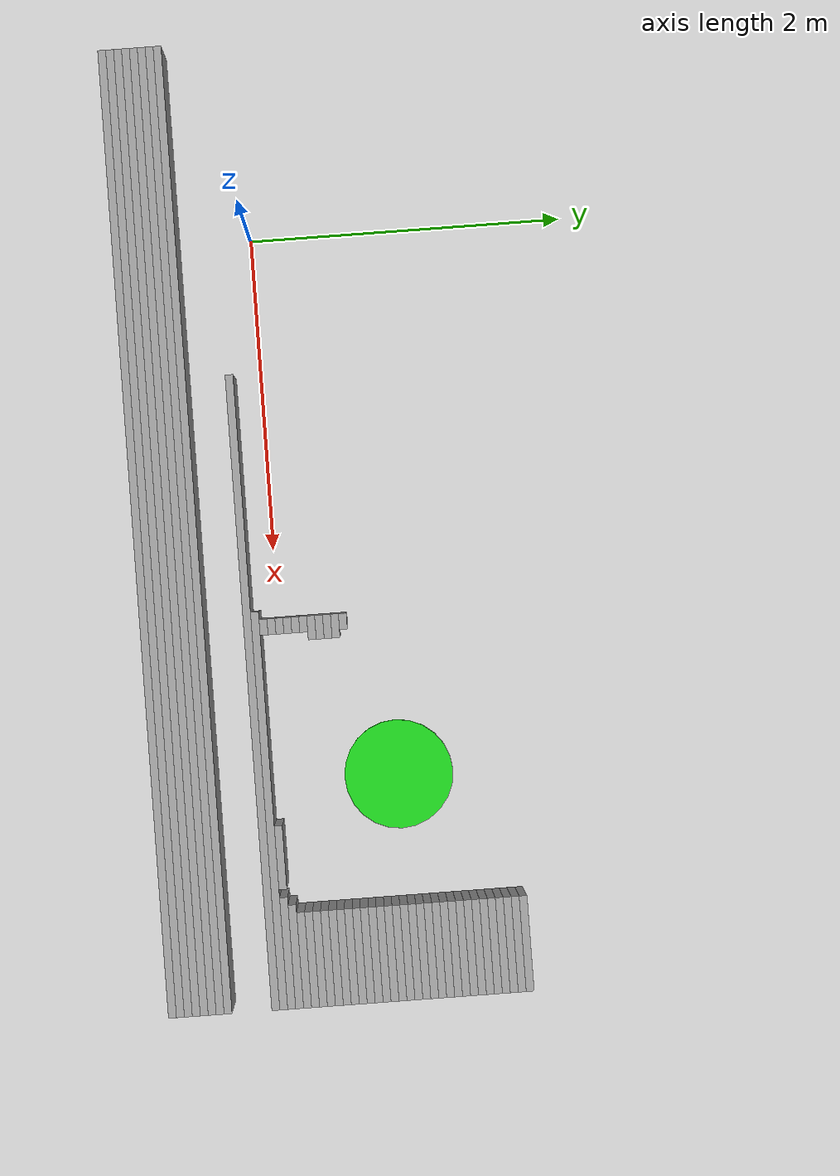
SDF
<sdf version="1.6">
 <world name="lab_world">
  <model name="ground_plane">
   <static>true</static>
   <link name="link">
    <collision name="collision">
     <geometry><plane><normal>0 0 1</normal><size>100 100</size></plane></geometry>
    </collision>
    <visual name="visual">
     <geometry><plane><normal>0 0 1</normal><size>100 100</size></plane></geometry>
     <material><ambient>0.8 0.8 0.8 1</ambient><diffuse>0.8 0.8 0.8 1</diffuse></material>
    </visual>
   </link>
  </model>
  <model name="wall_123">
   <static>true</static>
   <pose>4.5840 1.4160 0.2500 0 0 0</pose>
   <link name="link">
    <collision name="col"><geometry><box><size>0.6000 0.0500 0.5000</size></box></geometry></collision>
    <visual name="vis">
     <geometry><box><size>0.6000 0.0500 0.5000</size></box></geometry>
     <material><ambient>0.4 0.4 0.4 1</ambient><diffuse>0.6 0.6 0.6 1</diffuse></material>
    </visual>
   </link>
  </model>
  <model name="wall_125">
   <static>true</static>
   <pose>4.5840 1.3660 0.2500 0 0 0</pose>
   <link name="link">
    <collision name="col"><geometry><box><size>0.6000 0.0500 0.5000</size></box></geometry></collision>
    <visual name="vis">
     <geometry><box><size>0.6000 0.0500 0.5000</size></box></geometry>
     <material><ambient>0.4 0.4 0.4 1</ambient><diffuse>0.6 0.6 0.6 1</diffuse></material>
    </visual>
   </link>
  </model>
  <model name="wall_127">
   <static>true</static>
   <pose>4.5840 1.3160 0.2500 0 0 0</pose>
   <link name="link">
    <collision name="col"><geometry><box><size>0.6000 0.0500 0.5000</size></box></geometry></collision>
    <visual name="vis">
     <geometry><box><size>0.6000 0.0500 0.5000</size></box></geometry>
     <material><ambient>0.4 0.4 0.4 1</ambient><diffuse>0.6 0.6 0.6 1</diffuse></material>
    </visual>
   </link>
  </model>
  <model name="wall_129">
   <static>true</static>
   <pose>4.5840 1.2660 0.2500 0 0 0</pose>
   <link name="link">
    <collision name="col"><geometry><box><size>0.6000 0.0500 0.5000</size></box></geometry></collision>
    <visual name="vis">
     <geometry><box><size>0.6000 0.0500 0.5000</size></box></geometry>
     <material><ambient>0.4 0.4 0.4 1</ambient><diffuse>0.6 0.6 0.6 1</diffuse></material>
    </visual>
   </link>
  </model>
  <model name="wall_131">
   <static>true</static>
   <pose>4.5840 1.2160 0.2500 0 0 0</pose>
   <link name="link">
    <collision name="col"><geometry><box><size>0.6000 0.0500 0.5000</size></box></geometry></collision>
    <visual name="vis">
     <geometry><box><size>0.6000 0.0500 0.5000</size></box></geometry>
     <material><ambient>0.4 0.4 0.4 1</ambient><diffuse>0.6 0.6 0.6 1</diffuse></material>
    </visual>
   </link>
  </model>
  <model name="wall_133">
   <static>true</static>
   <pose>4.5840 1.1660 0.2500 0 0 0</pose>
   <link name="link">
    <collision name="col"><geometry><box><size>0.6000 0.0500 0.5000</size></box></geometry></collision>
    <visual name="vis">
     <geometry><box><size>0.6000 0.0500 0.5000</size></box></geometry>
     <material><ambient>0.4 0.4 0.4 1</ambient><diffuse>0.6 0.6 0.6 1</diffuse></material>
    </visual>
   </link>
  </model>
  <model name="wall_135">
   <static>true</static>
   <pose>4.5840 1.1160 0.2500 0 0 0</pose>
   <link name="link">
    <collision name="col"><geometry><box><size>0.6000 0.0500 0.5000</size></box></geometry></collision>
    <visual name="vis">
     <geometry><box><size>0.6000 0.0500 0.5000</size></box></geometry>
     <material><ambient>0.4 0.4 0.4 1</ambient><diffuse>0.6 0.6 0.6 1</diffuse></material>
    </visual>
   </link>
  </model>
  <model name="wall_137">
   <static>true</static>
   <pose>4.5840 1.0660 0.2500 0 0 0</pose>
   <link name="link">
    <collision name="col"><geometry><box><size>0.6000 0.0500 0.5000</size></box></geometry></collision>
    <visual name="vis">
     <geometry><box><size>0.6000 0.0500 0.5000</size></box></geometry>
     <material><ambient>0.4 0.4 0.4 1</ambient><diffuse>0.6 0.6 0.6 1</diffuse></material>
    </visual>
   </link>
  </model>
  <model name="wall_139">
   <static>true</static>
   <pose>4.5840 1.0160 0.2500 0 0 0</pose>
   <link name="link">
    <collision name="col"><geometry><box><size>0.6000 0.0500 0.5000</size></box></geometry></collision>
    <visual name="vis">
     <geometry><box><size>0.6000 0.0500 0.5000</size></box></geometry>
     <material><ambient>0.4 0.4 0.4 1</ambient><diffuse>0.6 0.6 0.6 1</diffuse></material>
    </visual>
   </link>
  </model>
  <model name="wall_141">
   <static>true</static>
   <pose>4.5840 0.9660 0.2500 0 0 0</pose>
   <link name="link">
    <collision name="col"><geometry><box><size>0.6000 0.0500 0.5000</size></box></geometry></collision>
    <visual name="vis">
     <geometry><box><size>0.6000 0.0500 0.5000</size></box></geometry>
     <material><ambient>0.4 0.4 0.4 1</ambient><diffuse>0.6 0.6 0.6 1</diffuse></material>
    </visual>
   </link>
  </model>
  <model name="wall_143">
   <static>true</static>
   <pose>4.5840 0.9160 0.2500 0 0 0</pose>
   <link name="link">
    <collision name="col"><geometry><box><size>0.6000 0.0500 0.5000</size></box></geometry></collision>
    <visual name="vis">
     <geometry><box><size>0.6000 0.0500 0.5000</size></box></geometry>
     <material><ambient>0.4 0.4 0.4 1</ambient><diffuse>0.6 0.6 0.6 1</diffuse></material>
    </visual>
   </link>
  </model>
  <model name="wall_145">
   <static>true</static>
   <pose>4.5840 0.8660 0.2500 0 0 0</pose>
   <link name="link">
    <collision name="col"><geometry><box><size>0.6000 0.0500 0.5000</size></box></geometry></collision>
    <visual name="vis">
     <geometry><box><size>0.6000 0.0500 0.5000</size></box></geometry>
     <material><ambient>0.4 0.4 0.4 1</ambient><diffuse>0.6 0.6 0.6 1</diffuse></material>
    </visual>
   </link>
  </model>
  <model name="wall_147">
   <static>true</static>
   <pose>4.5840 0.8160 0.2500 0 0 0</pose>
   <link name="link">
    <collision name="col"><geometry><box><size>0.6000 0.0500 0.5000</size></box></geometry></collision>
    <visual name="vis">
     <geometry><box><size>0.6000 0.0500 0.5000</size></box></geometry>
     <material><ambient>0.4 0.4 0.4 1</ambient><diffuse>0.6 0.6 0.6 1</diffuse></material>
    </visual>
   </link>
  </model>
  <model name="wall_149">
   <static>true</static>
   <pose>4.5840 0.7660 0.2500 0 0 0</pose>
   <link name="link">
    <collision name="col"><geometry><box><size>0.6000 0.0500 0.5000</size></box></geometry></collision>
    <visual name="vis">
     <geometry><box><size>0.6000 0.0500 0.5000</size></box></geometry>
     <material><ambient>0.4 0.4 0.4 1</ambient><diffuse>0.6 0.6 0.6 1</diffuse></material>
    </visual>
   </link>
  </model>
  <model name="wall_151">
   <static>true</static>
   <pose>4.5840 0.7160 0.2500 0 0 0</pose>
   <link name="link">
    <collision name="col"><geometry><box><size>0.6000 0.0500 0.5000</size></box></geometry></collision>
    <visual name="vis">
     <geometry><box><size>0.6000 0.0500 0.5000</size></box></geometry>
     <material><ambient>0.4 0.4 0.4 1</ambient><diffuse>0.6 0.6 0.6 1</diffuse></material>
    </visual>
   </link>
  </model>
  <model name="wall_153">
   <static>true</static>
   <pose>4.5840 0.6660 0.2500 0 0 0</pose>
   <link name="link">
    <collision name="col"><geometry><box><size>0.6000 0.0500 0.5000</size></box></geometry></collision>
    <visual name="vis">
     <geometry><box><size>0.6000 0.0500 0.5000</size></box></geometry>
     <material><ambient>0.4 0.4 0.4 1</ambient><diffuse>0.6 0.6 0.6 1</diffuse></material>
    </visual>
   </link>
  </model>
  <model name="wall_155">
   <static>true</static>
   <pose>4.5840 0.6160 0.2500 0 0 0</pose>
   <link name="link">
    <collision name="col"><geometry><box><size>0.6000 0.0500 0.5000</size></box></geometry></collision>
    <visual name="vis">
     <geometry><box><size>0.6000 0.0500 0.5000</size></box></geometry>
     <material><ambient>0.4 0.4 0.4 1</ambient><diffuse>0.6 0.6 0.6 1</diffuse></material>
    </visual>
   </link>
  </model>
  <model name="wall_157">
   <static>true</static>
   <pose>4.5840 0.5660 0.2500 0 0 0</pose>
   <link name="link">
    <collision name="col"><geometry><box><size>0.6000 0.0500 0.5000</size></box></geometry></collision>
    <visual name="vis">
     <geometry><box><size>0.6000 0.0500 0.5000</size></box></geometry>
     <material><ambient>0.4 0.4 0.4 1</ambient><diffuse>0.6 0.6 0.6 1</diffuse></material>
    </visual>
   </link>
  </model>
  <model name="wall_159">
   <static>true</static>
   <pose>4.5840 0.5160 0.2500 0 0 0</pose>
   <link name="link">
    <collision name="col"><geometry><box><size>0.6000 0.0500 0.5000</size></box></geometry></collision>
    <visual name="vis">
     <geometry><box><size>0.6000 0.0500 0.5000</size></box></geometry>
     <material><ambient>0.4 0.4 0.4 1</ambient><diffuse>0.6 0.6 0.6 1</diffuse></material>
    </visual>
   </link>
  </model>
  <model name="wall_161">
   <static>true</static>
   <pose>4.5840 0.4660 0.2500 0 0 0</pose>
   <link name="link">
    <collision name="col"><geometry><box><size>0.6000 0.0500 0.5000</size></box></geometry></collision>
    <visual name="vis">
     <geometry><box><size>0.6000 0.0500 0.5000</size></box></geometry>
     <material><ambient>0.4 0.4 0.4 1</ambient><diffuse>0.6 0.6 0.6 1</diffuse></material>
    </visual>
   </link>
  </model>
  <model name="wall_163">
   <static>true</static>
   <pose>2.4840 0.4160 0.2500 0 0 0</pose>
   <link name="link">
    <collision name="col"><geometry><box><size>0.1000 0.0500 0.5000</size></box></geometry></collision>
    <visual name="vis">
     <geometry><box><size>0.1000 0.0500 0.5000</size></box></geometry>
     <material><ambient>0.4 0.4 0.4 1</ambient><diffuse>0.6 0.6 0.6 1</diffuse></material>
    </visual>
   </link>
  </model>
  <model name="wall_164">
   <static>true</static>
   <pose>4.5840 0.4160 0.2500 0 0 0</pose>
   <link name="link">
    <collision name="col"><geometry><box><size>0.6000 0.0500 0.5000</size></box></geometry></collision>
    <visual name="vis">
     <geometry><box><size>0.6000 0.0500 0.5000</size></box></geometry>
     <material><ambient>0.4 0.4 0.4 1</ambient><diffuse>0.6 0.6 0.6 1</diffuse></material>
    </visual>
   </link>
  </model>
  <model name="wall_166">
   <static>true</static>
   <pose>2.5090 0.3660 0.2500 0 0 0</pose>
   <link name="link">
    <collision name="col"><geometry><box><size>0.1500 0.0500 0.5000</size></box></geometry></collision>
    <visual name="vis">
     <geometry><box><size>0.1500 0.0500 0.5000</size></box></geometry>
     <material><ambient>0.4 0.4 0.4 1</ambient><diffuse>0.6 0.6 0.6 1</diffuse></material>
    </visual>
   </link>
  </model>
  <model name="wall_167">
   <static>true</static>
   <pose>4.5840 0.3660 0.2500 0 0 0</pose>
   <link name="link">
    <collision name="col"><geometry><box><size>0.6000 0.0500 0.5000</size></box></geometry></collision>
    <visual name="vis">
     <geometry><box><size>0.6000 0.0500 0.5000</size></box></geometry>
     <material><ambient>0.4 0.4 0.4 1</ambient><diffuse>0.6 0.6 0.6 1</diffuse></material>
    </visual>
   </link>
  </model>
  <model name="wall_169">
   <static>true</static>
   <pose>2.5090 0.3160 0.2500 0 0 0</pose>
   <link name="link">
    <collision name="col"><geometry><box><size>0.1500 0.0500 0.5000</size></box></geometry></collision>
    <visual name="vis">
     <geometry><box><size>0.1500 0.0500 0.5000</size></box></geometry>
     <material><ambient>0.4 0.4 0.4 1</ambient><diffuse>0.6 0.6 0.6 1</diffuse></material>
    </visual>
   </link>
  </model>
  <model name="wall_170">
   <static>true</static>
   <pose>4.5840 0.3160 0.2500 0 0 0</pose>
   <link name="link">
    <collision name="col"><geometry><box><size>0.6000 0.0500 0.5000</size></box></geometry></collision>
    <visual name="vis">
     <geometry><box><size>0.6000 0.0500 0.5000</size></box></geometry>
     <material><ambient>0.4 0.4 0.4 1</ambient><diffuse>0.6 0.6 0.6 1</diffuse></material>
    </visual>
   </link>
  </model>
  <model name="wall_172">
   <static>true</static>
   <pose>2.5090 0.2660 0.2500 0 0 0</pose>
   <link name="link">
    <collision name="col"><geometry><box><size>0.1500 0.0500 0.5000</size></box></geometry></collision>
    <visual name="vis">
     <geometry><box><size>0.1500 0.0500 0.5000</size></box></geometry>
     <material><ambient>0.4 0.4 0.4 1</ambient><diffuse>0.6 0.6 0.6 1</diffuse></material>
    </visual>
   </link>
  </model>
  <model name="wall_173">
   <static>true</static>
   <pose>4.5840 0.2660 0.2500 0 0 0</pose>
   <link name="link">
    <collision name="col"><geometry><box><size>0.6000 0.0500 0.5000</size></box></geometry></collision>
    <visual name="vis">
     <geometry><box><size>0.6000 0.0500 0.5000</size></box></geometry>
     <material><ambient>0.4 0.4 0.4 1</ambient><diffuse>0.6 0.6 0.6 1</diffuse></material>
    </visual>
   </link>
  </model>
  <model name="wall_175">
   <static>true</static>
   <pose>2.5090 0.2160 0.2500 0 0 0</pose>
   <link name="link">
    <collision name="col"><geometry><box><size>0.1500 0.0500 0.5000</size></box></geometry></collision>
    <visual name="vis">
     <geometry><box><size>0.1500 0.0500 0.5000</size></box></geometry>
     <material><ambient>0.4 0.4 0.4 1</ambient><diffuse>0.6 0.6 0.6 1</diffuse></material>
    </visual>
   </link>
  </model>
  <model name="wall_176">
   <static>true</static>
   <pose>4.5840 0.2160 0.2500 0 0 0</pose>
   <link name="link">
    <collision name="col"><geometry><box><size>0.6000 0.0500 0.5000</size></box></geometry></collision>
    <visual name="vis">
     <geometry><box><size>0.6000 0.0500 0.5000</size></box></geometry>
     <material><ambient>0.4 0.4 0.4 1</ambient><diffuse>0.6 0.6 0.6 1</diffuse></material>
    </visual>
   </link>
  </model>
  <model name="wall_178">
   <static>true</static>
   <pose>2.4840 0.1660 0.2500 0 0 0</pose>
   <link name="link">
    <collision name="col"><geometry><box><size>0.1000 0.0500 0.5000</size></box></geometry></collision>
    <visual name="vis">
     <geometry><box><size>0.1000 0.0500 0.5000</size></box></geometry>
     <material><ambient>0.4 0.4 0.4 1</ambient><diffuse>0.6 0.6 0.6 1</diffuse></material>
    </visual>
   </link>
  </model>
  <model name="wall_179">
   <static>true</static>
   <pose>4.5840 0.1660 0.2500 0 0 0</pose>
   <link name="link">
    <collision name="col"><geometry><box><size>0.6000 0.0500 0.5000</size></box></geometry></collision>
    <visual name="vis">
     <geometry><box><size>0.6000 0.0500 0.5000</size></box></geometry>
     <material><ambient>0.4 0.4 0.4 1</ambient><diffuse>0.6 0.6 0.6 1</diffuse></material>
    </visual>
   </link>
  </model>
  <model name="wall_181">
   <static>true</static>
   <pose>2.4840 0.1160 0.2500 0 0 0</pose>
   <link name="link">
    <collision name="col"><geometry><box><size>0.1000 0.0500 0.5000</size></box></geometry></collision>
    <visual name="vis">
     <geometry><box><size>0.1000 0.0500 0.5000</size></box></geometry>
     <material><ambient>0.4 0.4 0.4 1</ambient><diffuse>0.6 0.6 0.6 1</diffuse></material>
    </visual>
   </link>
  </model>
  <model name="wall_182">
   <static>true</static>
   <pose>4.5840 0.1160 0.2500 0 0 0</pose>
   <link name="link">
    <collision name="col"><geometry><box><size>0.6000 0.0500 0.5000</size></box></geometry></collision>
    <visual name="vis">
     <geometry><box><size>0.6000 0.0500 0.5000</size></box></geometry>
     <material><ambient>0.4 0.4 0.4 1</ambient><diffuse>0.6 0.6 0.6 1</diffuse></material>
    </visual>
   </link>
  </model>
  <model name="wall_184">
   <static>true</static>
   <pose>2.4840 0.0660 0.2500 0 0 0</pose>
   <link name="link">
    <collision name="col"><geometry><box><size>0.1000 0.0500 0.5000</size></box></geometry></collision>
    <visual name="vis">
     <geometry><box><size>0.1000 0.0500 0.5000</size></box></geometry>
     <material><ambient>0.4 0.4 0.4 1</ambient><diffuse>0.6 0.6 0.6 1</diffuse></material>
    </visual>
   </link>
  </model>
  <model name="wall_185">
   <static>true</static>
   <pose>4.5840 0.0660 0.2500 0 0 0</pose>
   <link name="link">
    <collision name="col"><geometry><box><size>0.6000 0.0500 0.5000</size></box></geometry></collision>
    <visual name="vis">
     <geometry><box><size>0.6000 0.0500 0.5000</size></box></geometry>
     <material><ambient>0.4 0.4 0.4 1</ambient><diffuse>0.6 0.6 0.6 1</diffuse></material>
    </visual>
   </link>
  </model>
  <model name="wall_187">
   <static>true</static>
   <pose>2.4840 0.0160 0.2500 0 0 0</pose>
   <link name="link">
    <collision name="col"><geometry><box><size>0.1000 0.0500 0.5000</size></box></geometry></collision>
    <visual name="vis">
     <geometry><box><size>0.1000 0.0500 0.5000</size></box></geometry>
     <material><ambient>0.4 0.4 0.4 1</ambient><diffuse>0.6 0.6 0.6 1</diffuse></material>
    </visual>
   </link>
  </model>
  <model name="wall_188">
   <static>true</static>
   <pose>4.5840 0.0160 0.2500 0 0 0</pose>
   <link name="link">
    <collision name="col"><geometry><box><size>0.6000 0.0500 0.5000</size></box></geometry></collision>
    <visual name="vis">
     <geometry><box><size>0.6000 0.0500 0.5000</size></box></geometry>
     <material><ambient>0.4 0.4 0.4 1</ambient><diffuse>0.6 0.6 0.6 1</diffuse></material>
    </visual>
   </link>
  </model>
  <model name="wall_190">
   <static>true</static>
   <pose>2.4840 -0.0340 0.2500 0 0 0</pose>
   <link name="link">
    <collision name="col"><geometry><box><size>0.1000 0.0500 0.5000</size></box></geometry></collision>
    <visual name="vis">
     <geometry><box><size>0.1000 0.0500 0.5000</size></box></geometry>
     <material><ambient>0.4 0.4 0.4 1</ambient><diffuse>0.6 0.6 0.6 1</diffuse></material>
    </visual>
   </link>
  </model>
  <model name="wall_191">
   <static>true</static>
   <pose>4.5590 -0.0340 0.2500 0 0 0</pose>
   <link name="link">
    <collision name="col"><geometry><box><size>0.6500 0.0500 0.5000</size></box></geometry></collision>
    <visual name="vis">
     <geometry><box><size>0.6500 0.0500 0.5000</size></box></geometry>
     <material><ambient>0.4 0.4 0.4 1</ambient><diffuse>0.6 0.6 0.6 1</diffuse></material>
    </visual>
   </link>
  </model>
  <model name="wall_193">
   <static>true</static>
   <pose>2.4840 -0.0840 0.2500 0 0 0</pose>
   <link name="link">
    <collision name="col"><geometry><box><size>0.1000 0.0500 0.5000</size></box></geometry></collision>
    <visual name="vis">
     <geometry><box><size>0.1000 0.0500 0.5000</size></box></geometry>
     <material><ambient>0.4 0.4 0.4 1</ambient><diffuse>0.6 0.6 0.6 1</diffuse></material>
    </visual>
   </link>
  </model>
  <model name="wall_194">
   <static>true</static>
   <pose>3.9340 -0.0840 0.2500 0 0 0</pose>
   <link name="link">
    <collision name="col"><geometry><box><size>0.4000 0.0500 0.5000</size></box></geometry></collision>
    <visual name="vis">
     <geometry><box><size>0.4000 0.0500 0.5000</size></box></geometry>
     <material><ambient>0.4 0.4 0.4 1</ambient><diffuse>0.6 0.6 0.6 1</diffuse></material>
    </visual>
   </link>
  </model>
  <model name="wall_195">
   <static>true</static>
   <pose>4.5340 -0.0840 0.2500 0 0 0</pose>
   <link name="link">
    <collision name="col"><geometry><box><size>0.7000 0.0500 0.5000</size></box></geometry></collision>
    <visual name="vis">
     <geometry><box><size>0.7000 0.0500 0.5000</size></box></geometry>
     <material><ambient>0.4 0.4 0.4 1</ambient><diffuse>0.6 0.6 0.6 1</diffuse></material>
    </visual>
   </link>
  </model>
  <model name="wall_197">
   <static>true</static>
   <pose>3.6340 -0.1340 0.2500 0 0 0</pose>
   <link name="link">
    <collision name="col"><geometry><box><size>2.5000 0.0500 0.5000</size></box></geometry></collision>
    <visual name="vis">
     <geometry><box><size>2.5000 0.0500 0.5000</size></box></geometry>
     <material><ambient>0.4 0.4 0.4 1</ambient><diffuse>0.6 0.6 0.6 1</diffuse></material>
    </visual>
   </link>
  </model>
  <model name="wall_199">
   <static>true</static>
   <pose>2.8840 -0.1840 0.2500 0 0 0</pose>
   <link name="link">
    <collision name="col"><geometry><box><size>4.0000 0.0500 0.5000</size></box></geometry></collision>
    <visual name="vis">
     <geometry><box><size>4.0000 0.0500 0.5000</size></box></geometry>
     <material><ambient>0.4 0.4 0.4 1</ambient><diffuse>0.6 0.6 0.6 1</diffuse></material>
    </visual>
   </link>
  </model>
  <model name="wall_205">
   <static>true</static>
   <pose>1.8340 -0.4840 0.2500 0 0 0</pose>
   <link name="link">
    <collision name="col"><geometry><box><size>6.1000 0.0500 0.5000</size></box></geometry></collision>
    <visual name="vis">
     <geometry><box><size>6.1000 0.0500 0.5000</size></box></geometry>
     <material><ambient>0.4 0.4 0.4 1</ambient><diffuse>0.6 0.6 0.6 1</diffuse></material>
    </visual>
   </link>
  </model>
  <model name="wall_206">
   <static>true</static>
   <pose>1.8340 -0.5340 0.2500 0 0 0</pose>
   <link name="link">
    <collision name="col"><geometry><box><size>6.1000 0.0500 0.5000</size></box></geometry></collision>
    <visual name="vis">
     <geometry><box><size>6.1000 0.0500 0.5000</size></box></geometry>
     <material><ambient>0.4 0.4 0.4 1</ambient><diffuse>0.6 0.6 0.6 1</diffuse></material>
    </visual>
   </link>
  </model>
  <model name="wall_207">
   <static>true</static>
   <pose>1.8340 -0.5840 0.2500 0 0 0</pose>
   <link name="link">
    <collision name="col"><geometry><box><size>6.1000 0.0500 0.5000</size></box></geometry></collision>
    <visual name="vis">
     <geometry><box><size>6.1000 0.0500 0.5000</size></box></geometry>
     <material><ambient>0.4 0.4 0.4 1</ambient><diffuse>0.6 0.6 0.6 1</diffuse></material>
    </visual>
   </link>
  </model>
  <model name="wall_208">
   <static>true</static>
   <pose>1.8340 -0.6340 0.2500 0 0 0</pose>
   <link name="link">
    <collision name="col"><geometry><box><size>6.1000 0.0500 0.5000</size></box></geometry></collision>
    <visual name="vis">
     <geometry><box><size>6.1000 0.0500 0.5000</size></box></geometry>
     <material><ambient>0.4 0.4 0.4 1</ambient><diffuse>0.6 0.6 0.6 1</diffuse></material>
    </visual>
   </link>
  </model>
  <model name="wall_209">
   <static>true</static>
   <pose>1.8340 -0.6840 0.2500 0 0 0</pose>
   <link name="link">
    <collision name="col"><geometry><box><size>6.1000 0.0500 0.5000</size></box></geometry></collision>
    <visual name="vis">
     <geometry><box><size>6.1000 0.0500 0.5000</size></box></geometry>
     <material><ambient>0.4 0.4 0.4 1</ambient><diffuse>0.6 0.6 0.6 1</diffuse></material>
    </visual>
   </link>
  </model>
  <model name="wall_210">
   <static>true</static>
   <pose>1.8340 -0.7340 0.2500 0 0 0</pose>
   <link name="link">
    <collision name="col"><geometry><box><size>6.1000 0.0500 0.5000</size></box></geometry></collision>
    <visual name="vis">
     <geometry><box><size>6.1000 0.0500 0.5000</size></box></geometry>
     <material><ambient>0.4 0.4 0.4 1</ambient><diffuse>0.6 0.6 0.6 1</diffuse></material>
    </visual>
   </link>
  </model>
  <model name="wall_211">
   <static>true</static>
   <pose>1.8340 -0.7840 0.2500 0 0 0</pose>
   <link name="link">
    <collision name="col"><geometry><box><size>6.1000 0.0500 0.5000</size></box></geometry></collision>
    <visual name="vis">
     <geometry><box><size>6.1000 0.0500 0.5000</size></box></geometry>
     <material><ambient>0.4 0.4 0.4 1</ambient><diffuse>0.6 0.6 0.6 1</diffuse></material>
    </visual>
   </link>
  </model>
  <model name="wall_212">
   <static>true</static>
   <pose>1.8340 -0.8340 0.2500 0 0 0</pose>
   <link name="link">
    <collision name="col"><geometry><box><size>6.1000 0.0500 0.5000</size></box></geometry></collision>
    <visual name="vis">
     <geometry><box><size>6.1000 0.0500 0.5000</size></box></geometry>
     <material><ambient>0.4 0.4 0.4 1</ambient><diffuse>0.6 0.6 0.6 1</diffuse></material>
    </visual>
   </link>
  </model>
  <model name="fertilize_zone_B">
   <static>true</static>
   <pose>3.5 0.7 0.015 0 0 0</pose>
   <link name="link">
    <visual name="vis">
     <geometry><cylinder><radius>0.35</radius><length>0.02</length></cylinder></geometry>
     <material><ambient>0.1 0.8 0.1 1</ambient><diffuse>0.1 0.8 0.1 1</diffuse></material>
    </visual>
   </link>
  </model>
 </world>
</sdf>
